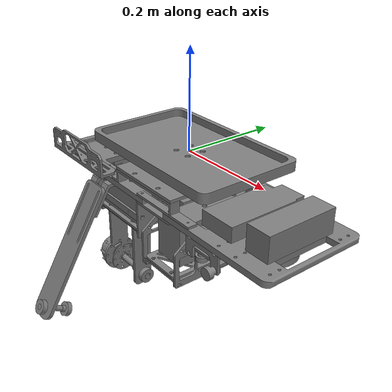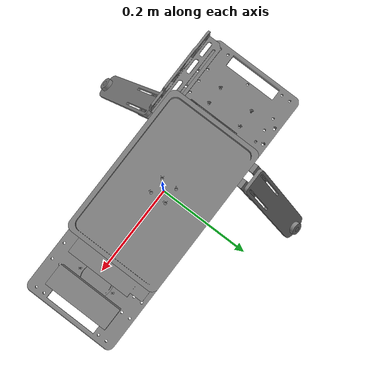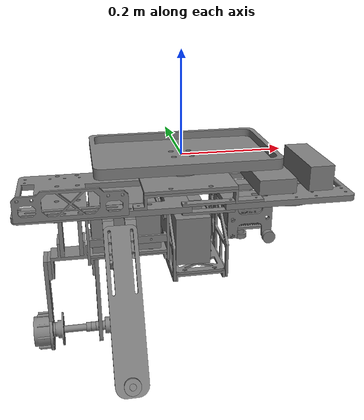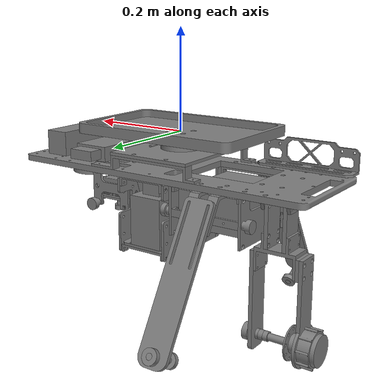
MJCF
<?xml version="1.0" encoding="UTF-8"?>
<mujoco>
<compiler meshdir="assets"/>
  <asset>
    <mesh file="t4__wu_fu_zhu_tui_ban_____che_shen__t4__wu_fu_zhu_tui_ban__1_xjc_xd80_h28_3d__fa_ke_hu___a1_01_1.stl"/>
    <mesh file="t4__wu_fu_zhu_tui_ban_____che_shen__t4__wu_fu_zhu_tui_ban__1__zhong_jian_diao_cang_xia_mian_gu_ding_jian__1.stl"/>
    <mesh file="t4__wu_fu_zhu_tui_ban_____che_shen__t4__wu_fu_zhu_tui_ban__1__zhong_jian_diao_cang_xia_mian_gu_ding_jian__2.stl"/>
    <mesh file="t4__wu_fu_zhu_tui_ban_____che_shen__t4__wu_fu_zhu_tui_ban__1__zhong_jian_diao_cang_xia_mian_gu_ding_ban__1.stl"/>
    <mesh file="t4__wu_fu_zhu_tui_ban_____che_shen__t4__wu_fu_zhu_tui_ban__1__zhong_jian_diao_cang_qian_ce_gu_ding_ban___jia_gao__1.stl"/>
    <mesh file="t4__wu_fu_zhu_tui_ban_____che_shen__t4__wu_fu_zhu_tui_ban__1__zhong_jian_diao_cang_hou_ce_gu_ding_ban___jia_gao__1.stl"/>
    <mesh file="t4__wu_fu_zhu_tui_ban_____che_shen__t4__wu_fu_zhu_tui_ban__1__zhong_jian_diao_cang_gu_ding_jian__1.stl"/>
    <mesh file="t4__wu_fu_zhu_tui_ban_____che_shen__t4__wu_fu_zhu_tui_ban__1__zhong_jian_diao_cang_gu_ding_jian__2.stl"/>
    <mesh file="t4__wu_fu_zhu_tui_ban_____che_shen__t4__wu_fu_zhu_tui_ban__1__chong_dian_bao__1.stl"/>
    <mesh file="t4__wu_fu_zhu_tui_ban_____che_shen__t4__wu_fu_zhu_tui_ban__1__li_chuan_gan_qi_xia_gu_ding_jian__1.stl"/>
    <mesh file="t4__wu_fu_zhu_tui_ban_____che_shen__t4__wu_fu_zhu_tui_ban__1__li_chuan_gan_qi_di_zuo__1.stl"/>
    <mesh file="t4__wu_fu_zhu_tui_ban_____che_shen__t4__wu_fu_zhu_tui_ban__1__li_chuan_gan_qi_di_zuo_zhi_jia__1.stl"/>
    <mesh file="t4__wu_fu_zhu_tui_ban_____che_shen__t4__wu_fu_zhu_tui_ban__1__li_chuan_gan_qi_di_zuo_zhi_jia__2.stl"/>
    <mesh file="t4__wu_fu_zhu_tui_ban_____che_shen__t4__wu_fu_zhu_tui_ban__1__hou_lun_bu_fen___gang_xing_tui__1_100mm15mm_guang_zhou__1.stl"/>
    <mesh file="t4__wu_fu_zhu_tui_ban_____che_shen__t4__wu_fu_zhu_tui_ban__1__hou_lun_bu_fen___gang_xing_tui__1_15_20_10_tao_tong__1.stl"/>
    <mesh file="t4__wu_fu_zhu_tui_ban_____che_shen__t4__wu_fu_zhu_tui_ban__1__hou_lun_bu_fen___gang_xing_tui__1_15_20_10_tao_tong__2.stl"/>
    <mesh file="t4__wu_fu_zhu_tui_ban_____che_shen__t4__wu_fu_zhu_tui_ban__1__hou_lun_bu_fen___gang_xing_tui__1_15_20_10_tao_tong__3.stl"/>
    <mesh file="t4__wu_fu_zhu_tui_ban_____che_shen__t4__wu_fu_zhu_tui_ban__1__hou_lun_bu_fen___gang_xing_tui__1_15_20_6_tao_tong__2.stl"/>
    <mesh file="t4__wu_fu_zhu_tui_ban_____che_shen__t4__wu_fu_zhu_tui_ban__1__hou_lun_bu_fen___gang_xing_tui__1_15_21_4_zhou_cheng__1.stl"/>
    <mesh file="t4__wu_fu_zhu_tui_ban_____che_shen__t4__wu_fu_zhu_tui_ban__1__hou_lun_bu_fen___gang_xing_tui__1_15_21_4_zhou_cheng__2.stl"/>
    <mesh file="t4__wu_fu_zhu_tui_ban_____che_shen__t4__wu_fu_zhu_tui_ban__1__hou_lun_bu_fen___gang_xing_tui__1_15_35_12_gu_ding_huan__1.stl"/>
    <mesh file="t4__wu_fu_zhu_tui_ban_____che_shen__t4__wu_fu_zhu_tui_ban__1__hou_lun_bu_fen___gang_xing_tui__1__gang_xing_hou_lun_gu_ding_jian__1.stl"/>
    <mesh file="t4__wu_fu_zhu_tui_ban_____che_shen__t4__wu_fu_zhu_tui_ban__1__hou_lun_bu_fen___gang_xing_tui__1__hou_tui_ce_xiang_tan_xian_wei_jian__2.stl"/>
    <mesh file="t4__wu_fu_zhu_tui_ban_____che_shen__t4__wu_fu_zhu_tui_ban__1__hou_lun_bu_fen___gang_xing_tui__1__hou_tui_ce_xiang_tan_xian_wei_jian__4.stl"/>
    <mesh file="t4__wu_fu_zhu_tui_ban_____che_shen__t4__wu_fu_zhu_tui_ban__1__hou_lun_bu_fen___gang_xing_tui__1__hou_tui_dian_pian__1.stl"/>
    <mesh file="t4__wu_fu_zhu_tui_ban_____che_shen__t4__wu_fu_zhu_tui_ban__1__hou_lun_bu_fen___gang_xing_tui__1__hou_lun___wu_jian_zhen___wu_fu_zhu_tui_gu_ding_jian__1.stl"/>
    <mesh file="t4__wu_fu_zhu_tui_ban_____che_shen__t4__wu_fu_zhu_tui_ban__1__hou_lun_bu_fen___gang_xing_tui__1__hou_lun___dian_ji_lian_jie_jian__new_1.stl"/>
    <mesh file="t4__wu_fu_zhu_tui_ban_____che_shen__t4__wu_fu_zhu_tui_ban__1__hou_lun_bu_fen___gang_xing_tui__1__hou_lun___dian_ji_lian_jie_jian__new__wai_ce__1.stl"/>
    <mesh file="t4__wu_fu_zhu_tui_ban_____che_shen__t4__wu_fu_zhu_tui_ban__1__hou_lun_bu_fen___gang_xing_tui__1__dian_pian__1.stl"/>
    <mesh file="t4__wu_fu_zhu_tui_ban_____che_shen__t4__wu_fu_zhu_tui_ban__1__hou_lun_bu_fen___gang_xing_tui__1__xiao_mi_dian_ji__1__xiao_mi_dian_ji_gu_ding_duan__1.stl"/>
    <mesh file="t4__wu_fu_zhu_tui_ban_____che_shen__t4__wu_fu_zhu_tui_ban__1__hou_lun_bu_fen___gang_xing_tui__1__xiao_mi_dian_ji__1__xiao_mi_dian_ji_shu_chu_duan__1.stl"/>
    <mesh file="t4__wu_fu_zhu_tui_ban_____che_shen__t4__wu_fu_zhu_tui_ban__1__hou_lun_bu_fen___gang_xing_tui__1__xiao_mi_dian_ji___quan_xiang_lun_lian_jie_jian__new_1.stl"/>
    <mesh file="t4__wu_fu_zhu_tui_ban_____che_shen__t4__wu_fu_zhu_tui_ban__1__tuo_pan__1.stl"/>
    <mesh file="t4__wu_fu_zhu_tui_ban_____che_shen__t4__wu_fu_zhu_tui_ban__1__zhi_cheng_tui__1_12_14_16_tao_tong__1.stl"/>
    <mesh file="t4__wu_fu_zhu_tui_ban_____che_shen__t4__wu_fu_zhu_tui_ban__1__zhi_cheng_tui__1_12_14_8_tao_tong__1.stl"/>
    <mesh file="t4__wu_fu_zhu_tui_ban_____che_shen__t4__wu_fu_zhu_tui_ban__1__zhi_cheng_tui__1_12_30_10_gu_ding_huan__1.stl"/>
    <mesh file="t4__wu_fu_zhu_tui_ban_____che_shen__t4__wu_fu_zhu_tui_ban__1__zhi_cheng_tui__1_12_30_10_gu_ding_huan__2.stl"/>
    <mesh file="t4__wu_fu_zhu_tui_ban_____che_shen__t4__wu_fu_zhu_tui_ban__1__zhi_cheng_tui__1_12mm_zhi_jing_guang_zhou___zhi_cheng_tui__1.stl"/>
    <mesh file="t4__wu_fu_zhu_tui_ban_____che_shen__t4__wu_fu_zhu_tui_ban__1__zhi_cheng_tui__1__zhi_cheng_tui___che_jia_gu_ding_jian__1.stl"/>
    <mesh file="t4__wu_fu_zhu_tui_ban_____che_shen__t4__wu_fu_zhu_tui_ban__1__zhi_cheng_tui__1__zhi_cheng_tui___che_jia_gu_ding_jian__2.stl"/>
    <mesh file="t4__wu_fu_zhu_tui_ban_____che_shen__t4__wu_fu_zhu_tui_ban__1__zhi_cheng_tui__1__zhi_cheng_tui_zhi_jia__280_1.stl"/>
    <mesh file="t4__wu_fu_zhu_tui_ban_____che_shen__t4__wu_fu_zhu_tui_ban__1__zhi_cheng_tui__2_12_14_16_tao_tong__1.stl"/>
    <mesh file="t4__wu_fu_zhu_tui_ban_____che_shen__t4__wu_fu_zhu_tui_ban__1__zhi_cheng_tui__2_12_14_8_tao_tong__1.stl"/>
    <mesh file="t4__wu_fu_zhu_tui_ban_____che_shen__t4__wu_fu_zhu_tui_ban__1__zhi_cheng_tui__2_12_30_10_gu_ding_huan__1.stl"/>
    <mesh file="t4__wu_fu_zhu_tui_ban_____che_shen__t4__wu_fu_zhu_tui_ban__1__zhi_cheng_tui__2_12_30_10_gu_ding_huan__2.stl"/>
    <mesh file="t4__wu_fu_zhu_tui_ban_____che_shen__t4__wu_fu_zhu_tui_ban__1__zhi_cheng_tui__2_12mm_zhi_jing_guang_zhou___zhi_cheng_tui__1.stl"/>
    <mesh file="t4__wu_fu_zhu_tui_ban_____che_shen__t4__wu_fu_zhu_tui_ban__1__zhi_cheng_tui__2__zhi_cheng_tui___che_jia_gu_ding_jian__1.stl"/>
    <mesh file="t4__wu_fu_zhu_tui_ban_____che_shen__t4__wu_fu_zhu_tui_ban__1__zhi_cheng_tui__2__zhi_cheng_tui___che_jia_gu_ding_jian__2.stl"/>
    <mesh file="t4__wu_fu_zhu_tui_ban_____che_shen__t4__wu_fu_zhu_tui_ban__1__zhi_cheng_tui__2__zhi_cheng_tui_zhi_jia__280_1.stl"/>
    <mesh file="t4__wu_fu_zhu_tui_ban_____che_shen__t4__wu_fu_zhu_tui_ban__1__ji_shen_tan_xian_wei_ban__1.stl"/>
    <mesh file="t4__wu_fu_zhu_tui_ban_____che_shen__t4__wu_fu_zhu_tui_ban__1__dian_chi_cang__1_24v_dian_chi__1.stl"/>
    <mesh file="t4__wu_fu_zhu_tui_ban_____che_shen__t4__wu_fu_zhu_tui_ban__1__dian_chi_cang__1_m6_shou_ning_luo_shuan__1.stl"/>
    <mesh file="t4__wu_fu_zhu_tui_ban_____che_shen__t4__wu_fu_zhu_tui_ban__1__dian_chi_cang__1_m6_shou_ning_luo_shuan__2.stl"/>
    <mesh file="t4__wu_fu_zhu_tui_ban_____che_shen__t4__wu_fu_zhu_tui_ban__1__dian_chi_cang__1__dian_chi_cang_xia_gu_ding_ban__2.stl"/>
    <mesh file="t4__wu_fu_zhu_tui_ban_____che_shen__t4__wu_fu_zhu_tui_ban__1__dian_chi_cang__1__dian_chi_cang_ce_mian_tan_xian_wei_jian__2_1.stl"/>
    <mesh file="t4__wu_fu_zhu_tui_ban_____che_shen__t4__wu_fu_zhu_tui_ban__1__dian_chi_cang__1__dian_chi_cang_ce_mian_tan_xian_wei_jian__4.stl"/>
    <mesh file="t4__wu_fu_zhu_tui_ban_____che_shen__t4__wu_fu_zhu_tui_ban__1__dian_chi_cang__1__dian_chi_cang_diao_zhuang_gu_ding_lv_jian__10.stl"/>
    <mesh file="t4__wu_fu_zhu_tui_ban_____che_shen__t4__wu_fu_zhu_tui_ban__1__dian_chi_cang__1__dian_chi_cang_diao_zhuang_gu_ding_lv_jian__4.stl"/>
    <mesh file="t4__wu_fu_zhu_tui_ban_____che_shen__t4__wu_fu_zhu_tui_ban__1__dian_chi_cang__1__dian_chi_cang_diao_zhuang_gu_ding_lv_jian__6.stl"/>
    <mesh file="t4__wu_fu_zhu_tui_ban_____che_shen__t4__wu_fu_zhu_tui_ban__1__dian_chi_cang__1__dian_chi_cang_diao_zhuang_gu_ding_lv_jian__7.stl"/>
    <mesh file="t4__wu_fu_zhu_tui_ban_____che_shen__t4__wu_fu_zhu_tui_ban__1__dian_chi_cang__1__dian_chi_cang_diao_zhuang_gu_ding_lv_jian__8.stl"/>
    <mesh file="t4__wu_fu_zhu_tui_ban_____che_shen__t4__wu_fu_zhu_tui_ban__1__dian_chi_cang__1__dian_chi_cang_diao_zhuang_gu_ding_lv_jian__9.stl"/>
    <mesh file="t4__wu_fu_zhu_tui_ban_____che_shen__t4__wu_fu_zhu_tui_ban__1__xiang_ji__1.stl"/>
    <mesh file="t4__wu_fu_zhu_tui_ban_____che_shen__t4__wu_fu_zhu_tui_ban__1__ying_wei_da_jason_1.stl"/>
    <mesh file="t4__wu_fu_zhu_tui_ban_____che_shen__t4__wu_fu_zhu_tui_ban__1__che_jia_ce_mian_shang_gu_ding_jian__1.stl"/>
    <mesh file="t4__wu_fu_zhu_tui_ban_____che_shen__t4__wu_fu_zhu_tui_ban__1__che_jia_ce_mian_gu_ding_jian__1.stl"/>
    <mesh file="t4__wu_fu_zhu_tui_ban_____che_shen__t4__wu_fu_zhu_tui_ban__1__zhuan_xiang_dian_ji___da_niu_ju__1__zhuan_xiang_dian_ji___da_niu_ju___gu_ding_duan__1.stl"/>
    <mesh file="t4__wu_fu_zhu_tui_ban_____che_shen__t4__wu_fu_zhu_tui_ban__1__zhuan_xiang_dian_ji___da_niu_ju__1__zhuan_xiang_dian_ji___da_niu_ju___shu_chu_duan__1.stl"/>
    <mesh file="t4__wu_fu_zhu_tui_ban_____che_shen__t4__wu_fu_zhu_tui_ban__1__fu_zhu_tui_lian_jie_jian__1.stl"/>
    <mesh file="t4__wu_fu_zhu_tui_ban_____che_shen__t4__wu_fu_zhu_tui_ban__1__qu_dong_qi_jia_chong_dian_bao_cang__1_m4_shou_ning_luo_si__1.stl"/>
    <mesh file="t4__wu_fu_zhu_tui_ban_____che_shen__t4__wu_fu_zhu_tui_ban__1__qu_dong_qi_jia_chong_dian_bao_cang__1_m4_shou_ning_luo_si__2.stl"/>
    <mesh file="t4__wu_fu_zhu_tui_ban_____che_shen__t4__wu_fu_zhu_tui_ban__1__qu_dong_qi_jia_chong_dian_bao_cang__1_m6_shou_ning_luo_shuan__2.stl"/>
    <mesh file="t4__wu_fu_zhu_tui_ban_____che_shen__t4__wu_fu_zhu_tui_ban__1__qu_dong_qi_jia_chong_dian_bao_cang__1_m6_shou_ning_luo_shuan__3.stl"/>
    <mesh file="t4__wu_fu_zhu_tui_ban_____che_shen__t4__wu_fu_zhu_tui_ban__1__qu_dong_qi_jia_chong_dian_bao_cang__1__chong_dian_bao_cang_xia_gu_ding_ban__1.stl"/>
    <mesh file="t4__wu_fu_zhu_tui_ban_____che_shen__t4__wu_fu_zhu_tui_ban__1__qu_dong_qi_jia_chong_dian_bao_cang__1__chong_dian_bao_cang_ce_mian_tan_xian_wei_jian__5.stl"/>
    <mesh file="t4__wu_fu_zhu_tui_ban_____che_shen__t4__wu_fu_zhu_tui_ban__1__qu_dong_qi_jia_chong_dian_bao_cang__1__chong_dian_bao_cang_ce_mian_tan_xian_wei_jian__7.stl"/>
    <mesh file="t4__wu_fu_zhu_tui_ban_____che_shen__t4__wu_fu_zhu_tui_ban__1__qu_dong_qi_jia_chong_dian_bao_cang__1__chong_dian_bao_cang_diao_zhuang_gu_ding_lv_jian__2.stl"/>
    <mesh file="t4__wu_fu_zhu_tui_ban_____che_shen__t4__wu_fu_zhu_tui_ban__1__qu_dong_qi_jia_chong_dian_bao_cang__1__chong_dian_bao_cang_diao_zhuang_gu_ding_lv_jian__3.stl"/>
    <mesh file="t4__wu_fu_zhu_tui_ban_____che_shen__t4__wu_fu_zhu_tui_ban__1__qu_dong_qi_jia_chong_dian_bao_cang__1__chong_dian_bao_cang_diao_zhuang_gu_ding_lv_jian__4.stl"/>
    <mesh file="t4__wu_fu_zhu_tui_ban_____che_shen__t4__wu_fu_zhu_tui_ban__1__qu_dong_qi_jia_chong_dian_bao_cang__1__chong_dian_bao_cang_diao_zhuang_gu_ding_lv_jian__6.stl"/>
    <mesh file="t4__wu_fu_zhu_tui_ban_____che_shen__t4__wu_fu_zhu_tui_ban__1__qu_dong_qi_jia_chong_dian_bao_cang__1__qu_dong_qi_biao_zhun_mo_xing__1.stl"/>
  </asset>

  <default>
  <default class="车身_default">
  <geom contype="0" conaffinity="0"/>
  </default>
  </default>

  <worldbody>
  <body name="车身_body" pos="0 0 0">
    <geom type="mesh" mesh="t4__wu_fu_zhu_tui_ban_____che_shen__t4__wu_fu_zhu_tui_ban__1_xjc_xd80_h28_3d__fa_ke_hu___a1_01_1" mass="0.0001" class="车身_default"/>
    <geom type="mesh" mesh="t4__wu_fu_zhu_tui_ban_____che_shen__t4__wu_fu_zhu_tui_ban__1__zhong_jian_diao_cang_xia_mian_gu_ding_jian__1" mass="0.0001" class="车身_default"/>
    <geom type="mesh" mesh="t4__wu_fu_zhu_tui_ban_____che_shen__t4__wu_fu_zhu_tui_ban__1__zhong_jian_diao_cang_xia_mian_gu_ding_jian__2" mass="0.0001" class="车身_default"/>
    <geom type="mesh" mesh="t4__wu_fu_zhu_tui_ban_____che_shen__t4__wu_fu_zhu_tui_ban__1__zhong_jian_diao_cang_xia_mian_gu_ding_ban__1" mass="0.0001" class="车身_default"/>
    <geom type="mesh" mesh="t4__wu_fu_zhu_tui_ban_____che_shen__t4__wu_fu_zhu_tui_ban__1__zhong_jian_diao_cang_qian_ce_gu_ding_ban___jia_gao__1" mass="0.0001" class="车身_default"/>
    <geom type="mesh" mesh="t4__wu_fu_zhu_tui_ban_____che_shen__t4__wu_fu_zhu_tui_ban__1__zhong_jian_diao_cang_hou_ce_gu_ding_ban___jia_gao__1" mass="0.0001" class="车身_default"/>
    <geom type="mesh" mesh="t4__wu_fu_zhu_tui_ban_____che_shen__t4__wu_fu_zhu_tui_ban__1__zhong_jian_diao_cang_gu_ding_jian__1" mass="0.0001" class="车身_default"/>
    <geom type="mesh" mesh="t4__wu_fu_zhu_tui_ban_____che_shen__t4__wu_fu_zhu_tui_ban__1__zhong_jian_diao_cang_gu_ding_jian__2" mass="0.0001" class="车身_default"/>
    <geom type="mesh" mesh="t4__wu_fu_zhu_tui_ban_____che_shen__t4__wu_fu_zhu_tui_ban__1__chong_dian_bao__1" mass="0.0001" class="车身_default"/>
    <geom type="mesh" mesh="t4__wu_fu_zhu_tui_ban_____che_shen__t4__wu_fu_zhu_tui_ban__1__li_chuan_gan_qi_xia_gu_ding_jian__1" mass="0.0001" class="车身_default"/>
    <geom type="mesh" mesh="t4__wu_fu_zhu_tui_ban_____che_shen__t4__wu_fu_zhu_tui_ban__1__li_chuan_gan_qi_di_zuo__1" mass="0.0001" class="车身_default"/>
    <geom type="mesh" mesh="t4__wu_fu_zhu_tui_ban_____che_shen__t4__wu_fu_zhu_tui_ban__1__li_chuan_gan_qi_di_zuo_zhi_jia__1" mass="0.0001" class="车身_default"/>
    <geom type="mesh" mesh="t4__wu_fu_zhu_tui_ban_____che_shen__t4__wu_fu_zhu_tui_ban__1__li_chuan_gan_qi_di_zuo_zhi_jia__2" mass="0.0001" class="车身_default"/>
    <geom type="mesh" mesh="t4__wu_fu_zhu_tui_ban_____che_shen__t4__wu_fu_zhu_tui_ban__1__hou_lun_bu_fen___gang_xing_tui__1_100mm15mm_guang_zhou__1" mass="0.0001" class="车身_default"/>
    <geom type="mesh" mesh="t4__wu_fu_zhu_tui_ban_____che_shen__t4__wu_fu_zhu_tui_ban__1__hou_lun_bu_fen___gang_xing_tui__1_15_20_10_tao_tong__1" mass="0.0001" class="车身_default"/>
    <geom type="mesh" mesh="t4__wu_fu_zhu_tui_ban_____che_shen__t4__wu_fu_zhu_tui_ban__1__hou_lun_bu_fen___gang_xing_tui__1_15_20_10_tao_tong__2" mass="0.0001" class="车身_default"/>
    <geom type="mesh" mesh="t4__wu_fu_zhu_tui_ban_____che_shen__t4__wu_fu_zhu_tui_ban__1__hou_lun_bu_fen___gang_xing_tui__1_15_20_10_tao_tong__3" mass="0.0001" class="车身_default"/>
    <geom type="mesh" mesh="t4__wu_fu_zhu_tui_ban_____che_shen__t4__wu_fu_zhu_tui_ban__1__hou_lun_bu_fen___gang_xing_tui__1_15_20_6_tao_tong__2" mass="0.0001" class="车身_default"/>
    <geom type="mesh" mesh="t4__wu_fu_zhu_tui_ban_____che_shen__t4__wu_fu_zhu_tui_ban__1__hou_lun_bu_fen___gang_xing_tui__1_15_21_4_zhou_cheng__1" mass="0.0001" class="车身_default"/>
    <geom type="mesh" mesh="t4__wu_fu_zhu_tui_ban_____che_shen__t4__wu_fu_zhu_tui_ban__1__hou_lun_bu_fen___gang_xing_tui__1_15_21_4_zhou_cheng__2" mass="0.0001" class="车身_default"/>
    <geom type="mesh" mesh="t4__wu_fu_zhu_tui_ban_____che_shen__t4__wu_fu_zhu_tui_ban__1__hou_lun_bu_fen___gang_xing_tui__1_15_35_12_gu_ding_huan__1" mass="0.0001" class="车身_default"/>
    <geom type="mesh" mesh="t4__wu_fu_zhu_tui_ban_____che_shen__t4__wu_fu_zhu_tui_ban__1__hou_lun_bu_fen___gang_xing_tui__1__gang_xing_hou_lun_gu_ding_jian__1" mass="0.0001" class="车身_default"/>
    <geom type="mesh" mesh="t4__wu_fu_zhu_tui_ban_____che_shen__t4__wu_fu_zhu_tui_ban__1__hou_lun_bu_fen___gang_xing_tui__1__hou_tui_ce_xiang_tan_xian_wei_jian__2" mass="0.0001" class="车身_default"/>
    <geom type="mesh" mesh="t4__wu_fu_zhu_tui_ban_____che_shen__t4__wu_fu_zhu_tui_ban__1__hou_lun_bu_fen___gang_xing_tui__1__hou_tui_ce_xiang_tan_xian_wei_jian__4" mass="0.0001" class="车身_default"/>
    <geom type="mesh" mesh="t4__wu_fu_zhu_tui_ban_____che_shen__t4__wu_fu_zhu_tui_ban__1__hou_lun_bu_fen___gang_xing_tui__1__hou_tui_dian_pian__1" mass="0.0001" class="车身_default"/>
    <geom type="mesh" mesh="t4__wu_fu_zhu_tui_ban_____che_shen__t4__wu_fu_zhu_tui_ban__1__hou_lun_bu_fen___gang_xing_tui__1__hou_lun___wu_jian_zhen___wu_fu_zhu_tui_gu_ding_jian__1" mass="0.0001" class="车身_default"/>
    <geom type="mesh" mesh="t4__wu_fu_zhu_tui_ban_____che_shen__t4__wu_fu_zhu_tui_ban__1__hou_lun_bu_fen___gang_xing_tui__1__hou_lun___dian_ji_lian_jie_jian__new_1" mass="0.0001" class="车身_default"/>
    <geom type="mesh" mesh="t4__wu_fu_zhu_tui_ban_____che_shen__t4__wu_fu_zhu_tui_ban__1__hou_lun_bu_fen___gang_xing_tui__1__hou_lun___dian_ji_lian_jie_jian__new__wai_ce__1" mass="0.0001" class="车身_default"/>
    <geom type="mesh" mesh="t4__wu_fu_zhu_tui_ban_____che_shen__t4__wu_fu_zhu_tui_ban__1__hou_lun_bu_fen___gang_xing_tui__1__dian_pian__1" mass="0.0001" class="车身_default"/>
    <geom type="mesh" mesh="t4__wu_fu_zhu_tui_ban_____che_shen__t4__wu_fu_zhu_tui_ban__1__hou_lun_bu_fen___gang_xing_tui__1__xiao_mi_dian_ji__1__xiao_mi_dian_ji_gu_ding_duan__1" mass="0.0001" class="车身_default"/>
    <geom type="mesh" mesh="t4__wu_fu_zhu_tui_ban_____che_shen__t4__wu_fu_zhu_tui_ban__1__hou_lun_bu_fen___gang_xing_tui__1__xiao_mi_dian_ji__1__xiao_mi_dian_ji_shu_chu_duan__1" mass="0.0001" class="车身_default"/>
    <geom type="mesh" mesh="t4__wu_fu_zhu_tui_ban_____che_shen__t4__wu_fu_zhu_tui_ban__1__hou_lun_bu_fen___gang_xing_tui__1__xiao_mi_dian_ji___quan_xiang_lun_lian_jie_jian__new_1" mass="0.0001" class="车身_default"/>
    <geom type="mesh" mesh="t4__wu_fu_zhu_tui_ban_____che_shen__t4__wu_fu_zhu_tui_ban__1__tuo_pan__1" mass="0.0001" class="车身_default"/>
    <geom type="mesh" mesh="t4__wu_fu_zhu_tui_ban_____che_shen__t4__wu_fu_zhu_tui_ban__1__zhi_cheng_tui__1_12_14_16_tao_tong__1" mass="0.0001" class="车身_default"/>
    <geom type="mesh" mesh="t4__wu_fu_zhu_tui_ban_____che_shen__t4__wu_fu_zhu_tui_ban__1__zhi_cheng_tui__1_12_14_8_tao_tong__1" mass="0.0001" class="车身_default"/>
    <geom type="mesh" mesh="t4__wu_fu_zhu_tui_ban_____che_shen__t4__wu_fu_zhu_tui_ban__1__zhi_cheng_tui__1_12_30_10_gu_ding_huan__1" mass="0.0001" class="车身_default"/>
    <geom type="mesh" mesh="t4__wu_fu_zhu_tui_ban_____che_shen__t4__wu_fu_zhu_tui_ban__1__zhi_cheng_tui__1_12_30_10_gu_ding_huan__2" mass="0.0001" class="车身_default"/>
    <geom type="mesh" mesh="t4__wu_fu_zhu_tui_ban_____che_shen__t4__wu_fu_zhu_tui_ban__1__zhi_cheng_tui__1_12mm_zhi_jing_guang_zhou___zhi_cheng_tui__1" mass="0.0001" class="车身_default"/>
    <geom type="mesh" mesh="t4__wu_fu_zhu_tui_ban_____che_shen__t4__wu_fu_zhu_tui_ban__1__zhi_cheng_tui__1__zhi_cheng_tui___che_jia_gu_ding_jian__1" mass="0.0001" class="车身_default"/>
    <geom type="mesh" mesh="t4__wu_fu_zhu_tui_ban_____che_shen__t4__wu_fu_zhu_tui_ban__1__zhi_cheng_tui__1__zhi_cheng_tui___che_jia_gu_ding_jian__2" mass="0.0001" class="车身_default"/>
    <geom type="mesh" mesh="t4__wu_fu_zhu_tui_ban_____che_shen__t4__wu_fu_zhu_tui_ban__1__zhi_cheng_tui__1__zhi_cheng_tui_zhi_jia__280_1" mass="0.0001" class="车身_default"/>
    <geom type="mesh" mesh="t4__wu_fu_zhu_tui_ban_____che_shen__t4__wu_fu_zhu_tui_ban__1__zhi_cheng_tui__2_12_14_16_tao_tong__1" mass="0.0001" class="车身_default"/>
    <geom type="mesh" mesh="t4__wu_fu_zhu_tui_ban_____che_shen__t4__wu_fu_zhu_tui_ban__1__zhi_cheng_tui__2_12_14_8_tao_tong__1" mass="0.0001" class="车身_default"/>
    <geom type="mesh" mesh="t4__wu_fu_zhu_tui_ban_____che_shen__t4__wu_fu_zhu_tui_ban__1__zhi_cheng_tui__2_12_30_10_gu_ding_huan__1" mass="0.0001" class="车身_default"/>
    <geom type="mesh" mesh="t4__wu_fu_zhu_tui_ban_____che_shen__t4__wu_fu_zhu_tui_ban__1__zhi_cheng_tui__2_12_30_10_gu_ding_huan__2" mass="0.0001" class="车身_default"/>
    <geom type="mesh" mesh="t4__wu_fu_zhu_tui_ban_____che_shen__t4__wu_fu_zhu_tui_ban__1__zhi_cheng_tui__2_12mm_zhi_jing_guang_zhou___zhi_cheng_tui__1" mass="0.0001" class="车身_default"/>
    <geom type="mesh" mesh="t4__wu_fu_zhu_tui_ban_____che_shen__t4__wu_fu_zhu_tui_ban__1__zhi_cheng_tui__2__zhi_cheng_tui___che_jia_gu_ding_jian__1" mass="0.0001" class="车身_default"/>
    <geom type="mesh" mesh="t4__wu_fu_zhu_tui_ban_____che_shen__t4__wu_fu_zhu_tui_ban__1__zhi_cheng_tui__2__zhi_cheng_tui___che_jia_gu_ding_jian__2" mass="0.0001" class="车身_default"/>
    <geom type="mesh" mesh="t4__wu_fu_zhu_tui_ban_____che_shen__t4__wu_fu_zhu_tui_ban__1__zhi_cheng_tui__2__zhi_cheng_tui_zhi_jia__280_1" mass="0.0001" class="车身_default"/>
    <geom type="mesh" mesh="t4__wu_fu_zhu_tui_ban_____che_shen__t4__wu_fu_zhu_tui_ban__1__ji_shen_tan_xian_wei_ban__1" mass="0.0001" class="车身_default"/>
    <geom type="mesh" mesh="t4__wu_fu_zhu_tui_ban_____che_shen__t4__wu_fu_zhu_tui_ban__1__dian_chi_cang__1_24v_dian_chi__1" mass="0.0001" class="车身_default"/>
    <geom type="mesh" mesh="t4__wu_fu_zhu_tui_ban_____che_shen__t4__wu_fu_zhu_tui_ban__1__dian_chi_cang__1_m6_shou_ning_luo_shuan__1" mass="0.0001" class="车身_default"/>
    <geom type="mesh" mesh="t4__wu_fu_zhu_tui_ban_____che_shen__t4__wu_fu_zhu_tui_ban__1__dian_chi_cang__1_m6_shou_ning_luo_shuan__2" mass="0.0001" class="车身_default"/>
    <geom type="mesh" mesh="t4__wu_fu_zhu_tui_ban_____che_shen__t4__wu_fu_zhu_tui_ban__1__dian_chi_cang__1__dian_chi_cang_xia_gu_ding_ban__2" mass="0.0001" class="车身_default"/>
    <geom type="mesh" mesh="t4__wu_fu_zhu_tui_ban_____che_shen__t4__wu_fu_zhu_tui_ban__1__dian_chi_cang__1__dian_chi_cang_ce_mian_tan_xian_wei_jian__2_1" mass="0.0001" class="车身_default"/>
    <geom type="mesh" mesh="t4__wu_fu_zhu_tui_ban_____che_shen__t4__wu_fu_zhu_tui_ban__1__dian_chi_cang__1__dian_chi_cang_ce_mian_tan_xian_wei_jian__4" mass="0.0001" class="车身_default"/>
    <geom type="mesh" mesh="t4__wu_fu_zhu_tui_ban_____che_shen__t4__wu_fu_zhu_tui_ban__1__dian_chi_cang__1__dian_chi_cang_diao_zhuang_gu_ding_lv_jian__10" mass="0.0001" class="车身_default"/>
    <geom type="mesh" mesh="t4__wu_fu_zhu_tui_ban_____che_shen__t4__wu_fu_zhu_tui_ban__1__dian_chi_cang__1__dian_chi_cang_diao_zhuang_gu_ding_lv_jian__4" mass="0.0001" class="车身_default"/>
    <geom type="mesh" mesh="t4__wu_fu_zhu_tui_ban_____che_shen__t4__wu_fu_zhu_tui_ban__1__dian_chi_cang__1__dian_chi_cang_diao_zhuang_gu_ding_lv_jian__6" mass="0.0001" class="车身_default"/>
    <geom type="mesh" mesh="t4__wu_fu_zhu_tui_ban_____che_shen__t4__wu_fu_zhu_tui_ban__1__dian_chi_cang__1__dian_chi_cang_diao_zhuang_gu_ding_lv_jian__7" mass="0.0001" class="车身_default"/>
    <geom type="mesh" mesh="t4__wu_fu_zhu_tui_ban_____che_shen__t4__wu_fu_zhu_tui_ban__1__dian_chi_cang__1__dian_chi_cang_diao_zhuang_gu_ding_lv_jian__8" mass="0.0001" class="车身_default"/>
    <geom type="mesh" mesh="t4__wu_fu_zhu_tui_ban_____che_shen__t4__wu_fu_zhu_tui_ban__1__dian_chi_cang__1__dian_chi_cang_diao_zhuang_gu_ding_lv_jian__9" mass="0.0001" class="车身_default"/>
    <geom type="mesh" mesh="t4__wu_fu_zhu_tui_ban_____che_shen__t4__wu_fu_zhu_tui_ban__1__xiang_ji__1" mass="0.0001" class="车身_default"/>
    <geom type="mesh" mesh="t4__wu_fu_zhu_tui_ban_____che_shen__t4__wu_fu_zhu_tui_ban__1__ying_wei_da_jason_1" mass="0.0001" class="车身_default"/>
    <geom type="mesh" mesh="t4__wu_fu_zhu_tui_ban_____che_shen__t4__wu_fu_zhu_tui_ban__1__che_jia_ce_mian_shang_gu_ding_jian__1" mass="0.0001" class="车身_default"/>
    <geom type="mesh" mesh="t4__wu_fu_zhu_tui_ban_____che_shen__t4__wu_fu_zhu_tui_ban__1__che_jia_ce_mian_gu_ding_jian__1" mass="0.0001" class="车身_default"/>
    <geom type="mesh" mesh="t4__wu_fu_zhu_tui_ban_____che_shen__t4__wu_fu_zhu_tui_ban__1__zhuan_xiang_dian_ji___da_niu_ju__1__zhuan_xiang_dian_ji___da_niu_ju___gu_ding_duan__1" mass="0.0001" class="车身_default"/>
    <geom type="mesh" mesh="t4__wu_fu_zhu_tui_ban_____che_shen__t4__wu_fu_zhu_tui_ban__1__zhuan_xiang_dian_ji___da_niu_ju__1__zhuan_xiang_dian_ji___da_niu_ju___shu_chu_duan__1" mass="0.0001" class="车身_default"/>
    <geom type="mesh" mesh="t4__wu_fu_zhu_tui_ban_____che_shen__t4__wu_fu_zhu_tui_ban__1__fu_zhu_tui_lian_jie_jian__1" mass="0.0001" class="车身_default"/>
    <geom type="mesh" mesh="t4__wu_fu_zhu_tui_ban_____che_shen__t4__wu_fu_zhu_tui_ban__1__qu_dong_qi_jia_chong_dian_bao_cang__1_m4_shou_ning_luo_si__1" mass="0.0001" class="车身_default"/>
    <geom type="mesh" mesh="t4__wu_fu_zhu_tui_ban_____che_shen__t4__wu_fu_zhu_tui_ban__1__qu_dong_qi_jia_chong_dian_bao_cang__1_m4_shou_ning_luo_si__2" mass="0.0001" class="车身_default"/>
    <geom type="mesh" mesh="t4__wu_fu_zhu_tui_ban_____che_shen__t4__wu_fu_zhu_tui_ban__1__qu_dong_qi_jia_chong_dian_bao_cang__1_m6_shou_ning_luo_shuan__2" mass="0.0001" class="车身_default"/>
    <geom type="mesh" mesh="t4__wu_fu_zhu_tui_ban_____che_shen__t4__wu_fu_zhu_tui_ban__1__qu_dong_qi_jia_chong_dian_bao_cang__1_m6_shou_ning_luo_shuan__3" mass="0.0001" class="车身_default"/>
    <geom type="mesh" mesh="t4__wu_fu_zhu_tui_ban_____che_shen__t4__wu_fu_zhu_tui_ban__1__qu_dong_qi_jia_chong_dian_bao_cang__1__chong_dian_bao_cang_xia_gu_ding_ban__1" mass="0.0001" class="车身_default"/>
    <geom type="mesh" mesh="t4__wu_fu_zhu_tui_ban_____che_shen__t4__wu_fu_zhu_tui_ban__1__qu_dong_qi_jia_chong_dian_bao_cang__1__chong_dian_bao_cang_ce_mian_tan_xian_wei_jian__5" mass="0.0001" class="车身_default"/>
    <geom type="mesh" mesh="t4__wu_fu_zhu_tui_ban_____che_shen__t4__wu_fu_zhu_tui_ban__1__qu_dong_qi_jia_chong_dian_bao_cang__1__chong_dian_bao_cang_ce_mian_tan_xian_wei_jian__7" mass="0.0001" class="车身_default"/>
    <geom type="mesh" mesh="t4__wu_fu_zhu_tui_ban_____che_shen__t4__wu_fu_zhu_tui_ban__1__qu_dong_qi_jia_chong_dian_bao_cang__1__chong_dian_bao_cang_diao_zhuang_gu_ding_lv_jian__2" mass="0.0001" class="车身_default"/>
    <geom type="mesh" mesh="t4__wu_fu_zhu_tui_ban_____che_shen__t4__wu_fu_zhu_tui_ban__1__qu_dong_qi_jia_chong_dian_bao_cang__1__chong_dian_bao_cang_diao_zhuang_gu_ding_lv_jian__3" mass="0.0001" class="车身_default"/>
    <geom type="mesh" mesh="t4__wu_fu_zhu_tui_ban_____che_shen__t4__wu_fu_zhu_tui_ban__1__qu_dong_qi_jia_chong_dian_bao_cang__1__chong_dian_bao_cang_diao_zhuang_gu_ding_lv_jian__4" mass="0.0001" class="车身_default"/>
    <geom type="mesh" mesh="t4__wu_fu_zhu_tui_ban_____che_shen__t4__wu_fu_zhu_tui_ban__1__qu_dong_qi_jia_chong_dian_bao_cang__1__chong_dian_bao_cang_diao_zhuang_gu_ding_lv_jian__6" mass="0.0001" class="车身_default"/>
    <geom type="mesh" mesh="t4__wu_fu_zhu_tui_ban_____che_shen__t4__wu_fu_zhu_tui_ban__1__qu_dong_qi_jia_chong_dian_bao_cang__1__qu_dong_qi_biao_zhun_mo_xing__1" mass="0.0001" class="车身_default"/>
  </body>
  </worldbody>
</mujoco>
